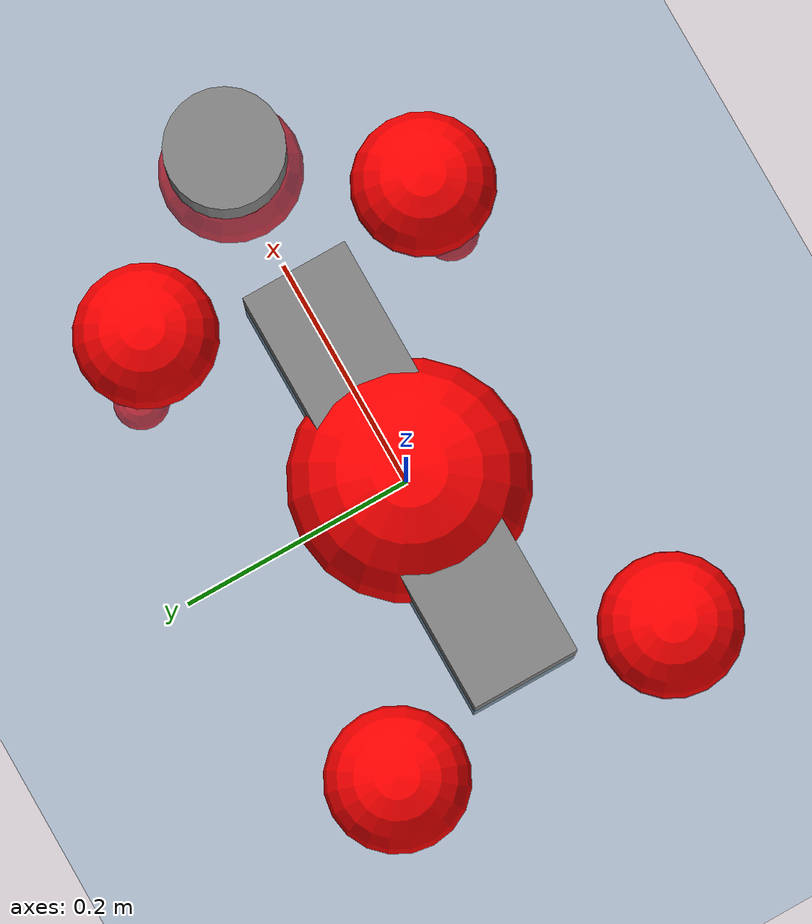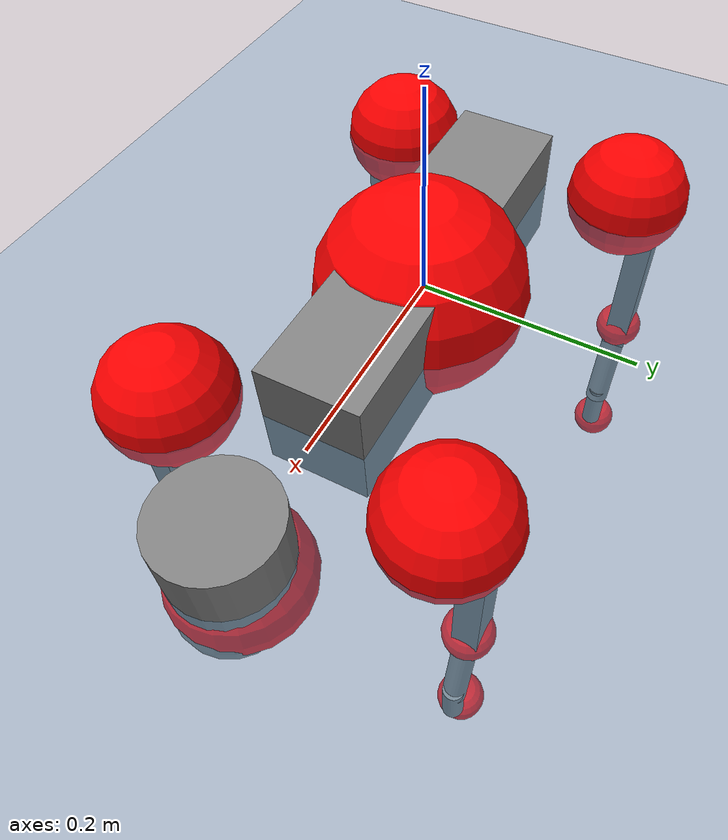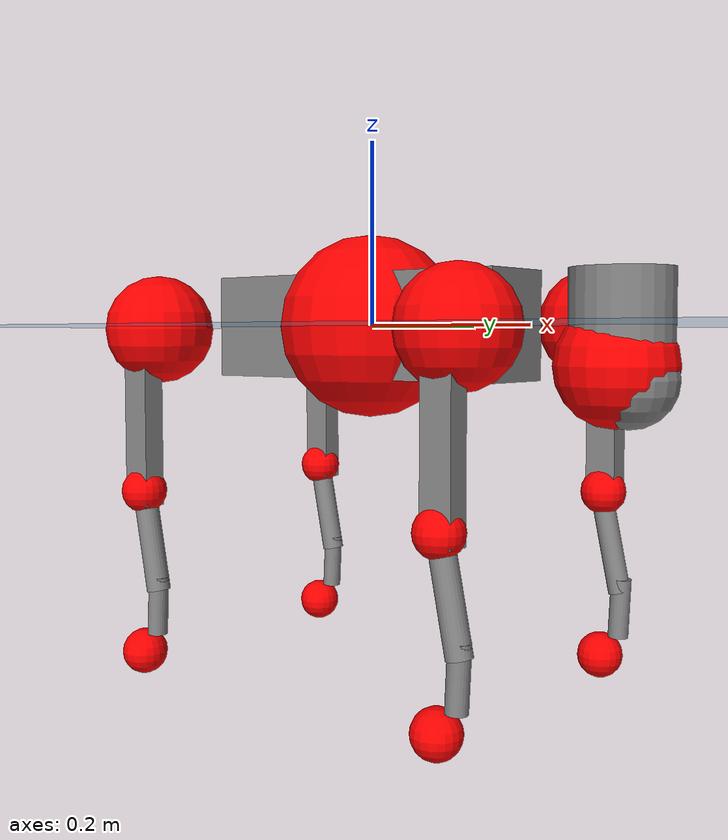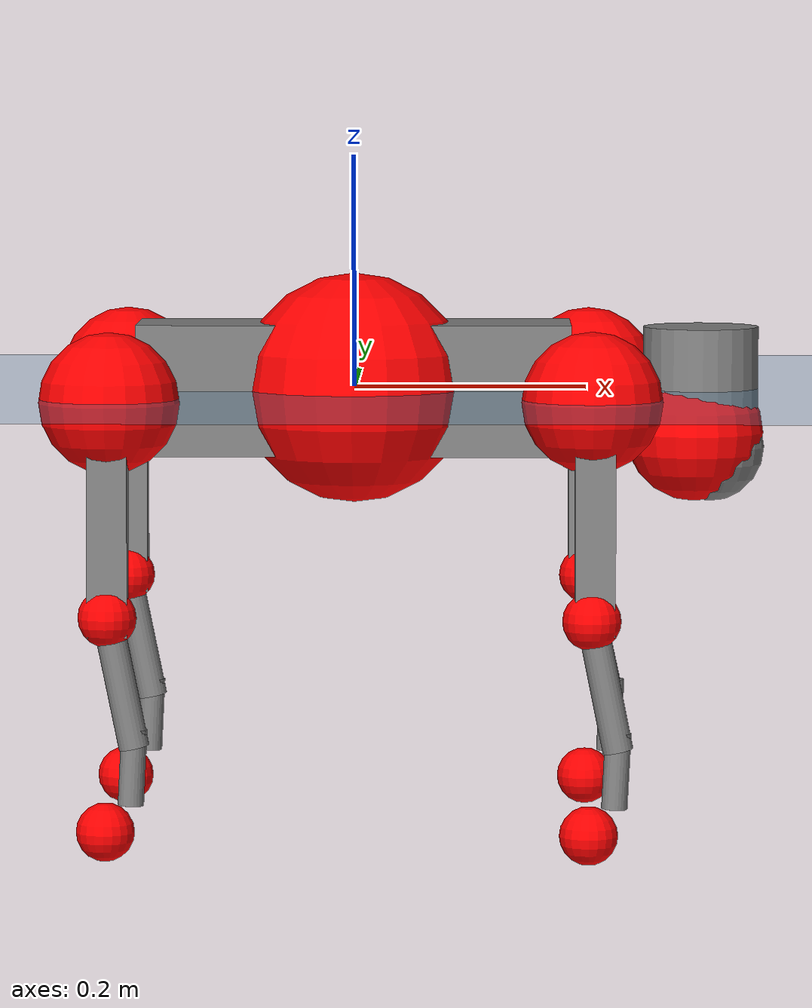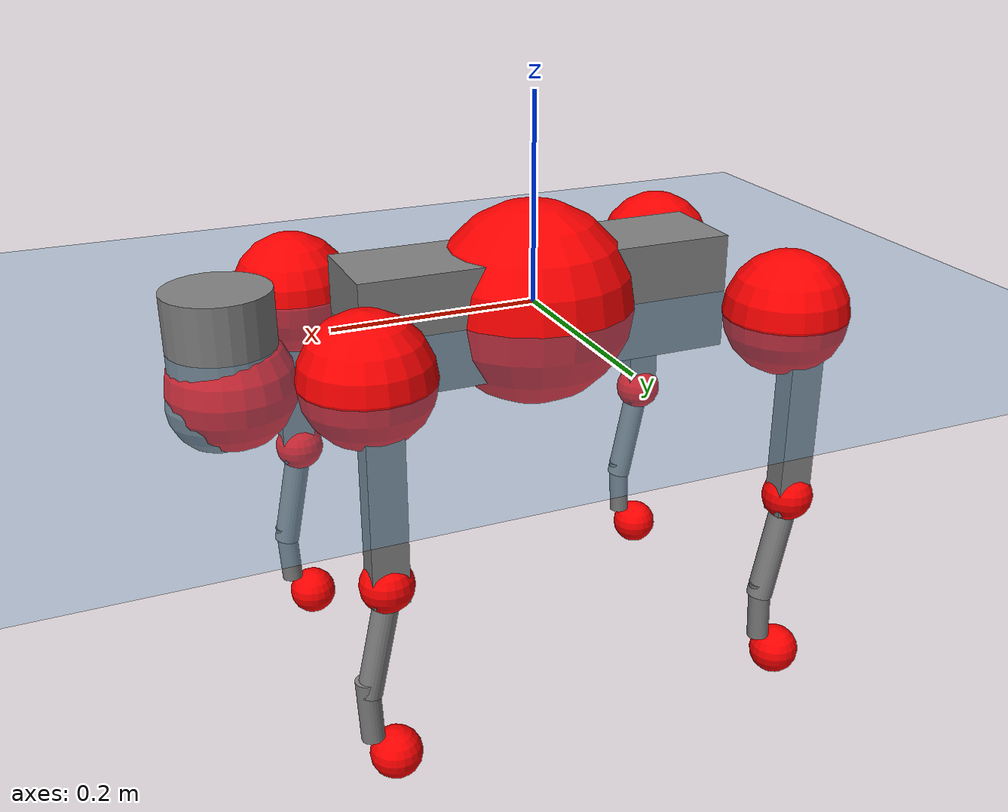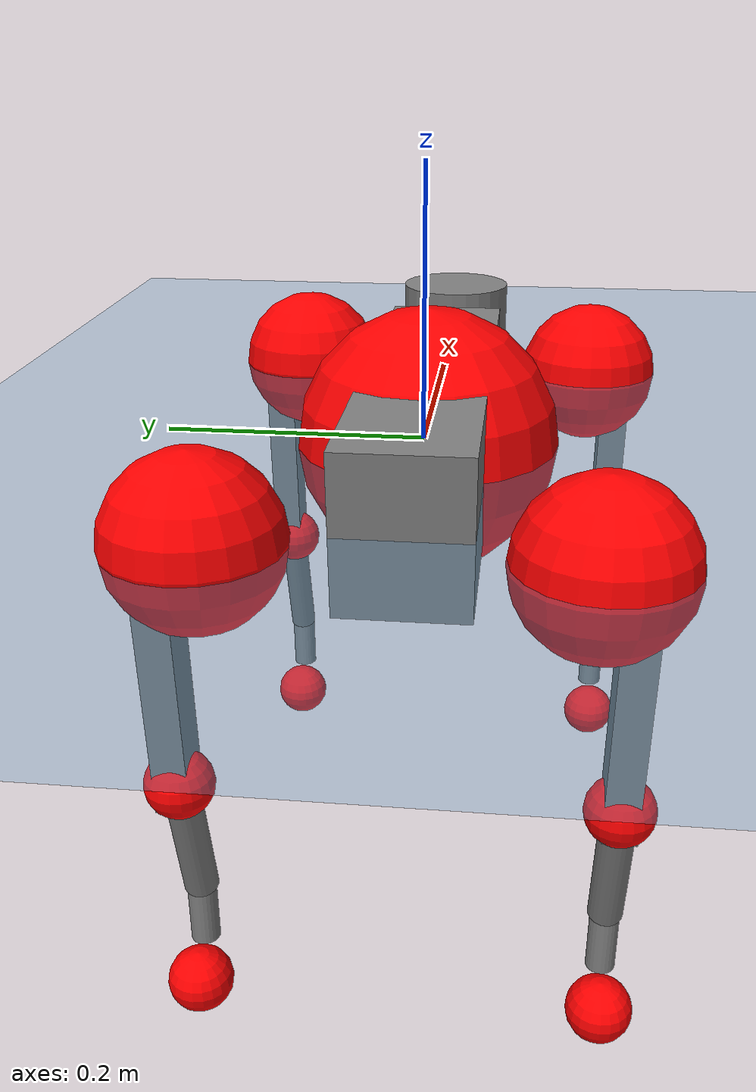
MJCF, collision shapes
<mujoco model="go2">
  <compiler angle="radian" assetdir="assets" balanceinertia="true" inertiafromgeom="false"/>

  <option timestep="0.005" density="1.2" viscosity="2e-05"/>

  <size nkey="1"/>

  <visual>
    <quality shadowsize="8192"/>
    <map shadowclip="0.5"/>
  </visual>

  <default>
    <default class="/">
      <geom contype="0" conaffinity="0" group="1" solref="-1000 -80"/>
      <site size="0.01 0.005 0.005" group="5"/>
      <general forcelimited="true" biastype="affine" gainprm="20" biasprm="0 -20 -0.5"/>
      <default class="go2">
        <joint armature="0.01" damping="0.01" frictionloss="0.2"/>
        <geom condim="1" margin="0.001"/>
        <default class="visual">
          <geom type="mesh" group="2"/>
        </default>
        <default class="collision">
          <geom group="3"/>
          <default class="foot">
            <geom size="0.022 0 0" condim="6" priority="1" friction="0.8 0.02 0.01" solimp="0.015 1 0.022"/>
          </default>
        </default>
        <default class="reward_collision_sphere">
          <geom group="5" rgba="1 0 0 1"/>
        </default>
      </default>
    </default>
  </default>

  <asset>
    <texture type="skybox" colorspace="auto" name="//unnamed_texture_0" builtin="gradient" rgb1="0.95 0.95 0.95" rgb2="0.95 0.95 0.95" width="100" height="600"/>
    <texture type="2d" colorspace="auto" name="texplane" builtin="checker" rgb1="0.345 0.575 0.748" rgb2="0.345 0.575 0.748" markrgb="1 1 1" width="512" height="512"/>
    <material name="MatPlane" class="/" texture="texplane" texuniform="true" texrepeat="2 2" specular="0.9"/>
    <material name="metal" class="/" rgba="0.9 0.95 0.95 1"/>
    <material name="black" class="/" rgba="0 0 0 1"/>
    <material name="white" class="/"/>
    <material name="gray" class="/" rgba="0.671705 0.692426 0.77427 1"/>
    <mesh name="base_0" class="/" file="base_0.obj"/>
    <mesh name="base_1" class="/" file="base_1.obj"/>
    <mesh name="base_2" class="/" file="base_2.obj"/>
    <mesh name="base_3" class="/" file="base_3.obj"/>
    <mesh name="base_4" class="/" file="base_4.obj"/>
    <mesh name="hip_0" class="/" file="hip_0.obj"/>
    <mesh name="hip_1" class="/" file="hip_1.obj"/>
    <mesh name="thigh_0" class="/" file="thigh_0.obj"/>
    <mesh name="thigh_1" class="/" file="thigh_1.obj"/>
    <mesh name="thigh_mirror_0" class="/" file="thigh_mirror_0.obj"/>
    <mesh name="thigh_mirror_1" class="/" file="thigh_mirror_1.obj"/>
    <mesh name="calf_0" class="/" file="calf_0.obj"/>
    <mesh name="calf_1" class="/" file="calf_1.obj"/>
    <mesh name="calf_mirror_0" class="/" file="calf_mirror_0.obj"/>
    <mesh name="calf_mirror_1" class="/" file="calf_mirror_1.obj"/>
    <mesh name="foot" class="/" file="foot.obj"/>
  </asset>

  <worldbody>
    <geom name="floor" class="/" size="100 100 0.125" type="plane" group="0" material="MatPlane"/>
    <light name="toplight_shadow" class="/" pos="0 0 5" dir="0.0990148 0.0990148 -0.990148" type="directional" ambient="0.04 0.04 0.04" diffuse="0.55 0.55 0.55" specular="0.12 0.12 0.12"/>
    <light name="toplight_fill" class="/" pos="0 0 5" dir="0.0990148 0.0990148 -0.990148" type="directional" castshadow="false" ambient="0.04 0.04 0.04" diffuse="0.3 0.3 0.3" specular="0.08 0.08 0.08"/>
    <body name="trunk" childclass="go2" pos="-0.000109917 -0.00282594 -0.000881736" quat="1 -1.56783e-05 1.08033e-05 -3.06382e-05">
      <inertial pos="0.022706 -0.00291832 -0.00437794" quat="-0.00610976 0.713476 0.00287287 0.700647" mass="6.65782" diaginertia="0.132467 0.136933 0.0110212"/>
      <joint name="//unnamed_joint_0" type="free" armature="0" damping="0" frictionloss="0"/>
      <geom name="//unnamed_geom_1" class="visual" material="black" mesh="base_0"/>
      <geom name="//unnamed_geom_2" class="visual" material="black" mesh="base_1"/>
      <geom name="//unnamed_geom_3" class="visual" material="black" mesh="base_2"/>
      <geom name="//unnamed_geom_4" class="visual" material="white" mesh="base_3"/>
      <geom name="//unnamed_geom_5" class="visual" material="gray" mesh="base_4"/>
      <geom name="trunk_1" class="collision" size="0.186718 0.0464066 0.0565814" type="box"/>
      <geom name="trunk_2" class="collision" size="0.0496328 0.0446695" pos="0.299321 0 0.00853465" type="cylinder"/>
      <geom name="trunk_3" class="collision" size="0.0466548" pos="0.307723 0 -0.0512079"/>
      <geom name="//unnamed_geom_9" class="reward_collision_sphere" size="0.0992655"/>
      <geom name="//unnamed_geom_10" class="reward_collision_sphere" size="0.0595593" pos="0.29407 0 -0.0384059"/>
      <site name="imu" pos="-0.0127046 0.0119107 0.0219862" size="0.00992655"/>
      <camera name="track" pos="0 -2.1485 0" quat="0.707107 0.707107 0 0" mode="trackcom"/>
      <camera name="ego_camera" pos="0.327678 0 0.0384059" quat="-0.5 -0.5 0.5 0.5"/>
      <body name="FL_hip" pos="0.205351 0.0515133 0.00208944" quat="0.999999 -0.000960101 -0.000237835 0.000731197">
        <inertial pos="-0.00464052 0.00224445 0.00202739" quat="0.501125 0.496797 0.504052 0.497995" mass="0.637037" diaginertia="0.00112822 0.000813431 0.000216681"/>
        <joint name="FL_hip_joint" pos="0 0 0" axis="0.999977 -0.00532651 0.00415215" stiffness="0.0120953" range="-1.01971 1.09121" armature="0.00995886" damping="0" frictionloss="0.225807"/>
        <geom name="//unnamed_geom_11" class="visual" material="metal" mesh="hip_0"/>
        <geom name="//unnamed_geom_12" class="visual" material="gray" mesh="hip_1"/>
        <geom name="//unnamed_geom_13" class="collision" size="0.0456621 0.0198531" pos="0 0.08594 0" quat="0.707107 0.707107 0 0" type="cylinder"/>
        <geom name="//unnamed_geom_14" class="reward_collision_sphere" size="0.0595593" pos="0 0.0751975 0"/>
        <body name="FL_thigh" pos="-0.000513884 0.10414 0.000440838" quat="0.999999 -0.000448964 -0.00131459 -0.000747537">
          <inertial pos="-0.001146 -0.0213576 -0.0288263" quat="0.830616 0.0717154 -0.0220172 0.55177" mass="1.12535" diaginertia="0.0074897 0.00831298 0.000395052"/>
          <joint name="FL_thigh_joint" pos="0 0 0" axis="-0.0176105 0.999831 0.0052379" stiffness="0.00478602" range="-1.52888 3.53605" armature="0.0113073" damping="0" frictionloss="0.208477"/>
          <geom name="//unnamed_geom_15" class="visual" material="metal" mesh="thigh_0"/>
          <geom name="//unnamed_geom_16" class="visual" material="gray" mesh="thigh_1"/>
          <geom name="//unnamed_geom_17" class="collision" size="0.105718 0.01216 0.0168751" pos="0 0 -0.0908941" quat="0.707107 0 0.707107 0" type="box"/>
          <body name="FL_calf" pos="-0.000271405 -0.00252133 -0.183076" quat="0.999999 -0.000821114 -0.000388018 -0.000712576">
            <inertial pos="0.0093451 -0.000838379 -0.122109" quat="0.710572 0.00153864 -0.0047212 0.703607" mass="0.239811" diaginertia="0.00184132 0.0021562 2.35042e-05"/>
            <joint name="FL_calf_joint" pos="0 0 0" axis="-0.00730296 0.999971 0.00214065" range="-2.7604 -0.828247" armature="0.00860706" damping="0.00352597" frictionloss="0.201394"/>
            <geom name="//unnamed_geom_18" class="visual" material="gray" mesh="calf_0"/>
            <geom name="//unnamed_geom_19" class="visual" material="black" mesh="calf_1"/>
            <geom name="FL_calf0" class="collision" size="0.0119119 0.0595593" pos="0.008402 0 -0.0512079" quat="0.994493 0 -0.104807 0" type="cylinder"/>
            <geom name="//unnamed_geom_21" class="collision" size="0.0109192 0.0322613" pos="0.021005 0 -0.126313" quat="0.999688 0 0.0249974 0" type="cylinder"/>
            <geom name="//unnamed_geom_22" class="visual" pos="0 0 -0.181788" quat="1 0 0 0" material="black" mesh="foot"/>
            <geom name="FL_foot" class="foot" size="0.0159516" pos="-0.0021005 0 -0.181788"/>
            <geom name="//unnamed_geom_24" class="reward_collision_sphere" size="0.0248164"/>
            <geom name="//unnamed_geom_25" class="reward_collision_sphere" size="0.0248164" pos="-0.0021005 0 -0.181788"/>
            <site name="FL_foot" class="foot" pos="-0.0021005 0 -0.181788" size="0.00992655"/>
          </body>
        </body>
      </body>
      <body name="FR_hip" pos="0.203006 -0.0525079 -0.002474" quat="1 2.54268e-07 -3.45016e-06 -1.94082e-06">
        <inertial pos="-0.00598105 -0.00297173 -0.000152517" quat="0.497251 0.505605 0.498315 0.498785" mass="0.634901" diaginertia="0.00111284 0.000828463 0.00022266"/>
        <joint name="FR_hip_joint" pos="0 0 0" axis="0.999911 0.00219675 -0.0131511" range="-1.05051 1.05945" armature="0.0100385" damping="0.0111494" frictionloss="0.20699"/>
        <geom name="//unnamed_geom_26" class="visual" pos="0 1.92338e-09 8.24979e-08" quat="4.63268e-05 1 0 0" material="metal" mesh="hip_0"/>
        <geom name="//unnamed_geom_27" class="visual" pos="0 3.11804e-09 -2.04049e-07" quat="4.63268e-05 1 0 0" material="gray" mesh="hip_1"/>
        <geom name="//unnamed_geom_28" class="collision" size="0.0456621 0.0198531" pos="0 -0.08594 0" quat="0.707107 0.707107 0 0" type="cylinder"/>
        <geom name="//unnamed_geom_29" class="reward_collision_sphere" size="0.0595593" pos="0 -0.0751975 0"/>
        <body name="FR_thigh" pos="0.00222976 -0.101207 0.0020662" quat="0.999999 0.000646403 0.000160901 0.000800924">
          <inertial pos="-0.00443644 0.0221964 -0.0274056" quat="0.545611 -0.0211669 0.0954701 0.832314" mass="1.20639" diaginertia="0.0077885 0.00866467 0.000405695"/>
          <joint name="FR_thigh_joint" pos="0 0 0" axis="-0.00035692 -0.999988 0.00496717" range="-3.53293 1.56881" armature="0.0094284" damping="0.0139301" frictionloss="0.198909"/>
          <geom name="//unnamed_geom_30" class="visual" material="metal" mesh="thigh_mirror_0"/>
          <geom name="//unnamed_geom_31" class="visual" material="gray" mesh="thigh_mirror_1"/>
          <geom name="//unnamed_geom_32" class="collision" size="0.105718 0.01216 0.0168751" pos="0 0 -0.0908941" quat="0.707107 0 0.707107 0" type="box"/>
          <body name="FR_calf" pos="-0.00258484 -0.00143441 -0.183845" quat="0.999999 0.000217668 0.000188313 -0.00129049">
            <inertial pos="0.00804942 0.000923942 -0.118309" quat="0.698455 -0.00644496 0.0121619 0.715522" mass="0.233275" diaginertia="0.00188986 0.00208429 2.41788e-05"/>
            <joint name="FR_calf_joint" pos="0 0 0" axis="-0.0024342 -0.999957 -0.00894687" range="0.816792 2.71936" armature="0.0109926" damping="0.0206222" frictionloss="0.171939"/>
            <geom name="//unnamed_geom_33" class="visual" material="gray" mesh="calf_mirror_0"/>
            <geom name="//unnamed_geom_34" class="visual" material="black" mesh="calf_mirror_1"/>
            <geom name="FR_calf0" class="collision" size="0.0129045 0.0595593" pos="0.0105025 0 -0.0512079" quat="0.995004 0 -0.0998334 0" type="cylinder"/>
            <geom name="//unnamed_geom_36" class="collision" size="0.0109192 0.0322613" pos="0.021005 0 -0.126313" quat="0.999688 0 0.0249974 0" type="cylinder"/>
            <geom name="//unnamed_geom_37" class="visual" pos="0 0 -0.181788" quat="1 0 0 0" material="black" mesh="foot"/>
            <geom name="FR_foot" class="foot" size="0.0202262" pos="-0.0021005 0 -0.181788"/>
            <geom name="//unnamed_geom_39" class="reward_collision_sphere" size="0.0248164"/>
            <geom name="//unnamed_geom_40" class="reward_collision_sphere" size="0.0248164" pos="-0.0021005 0 -0.181788"/>
            <site name="FR_foot" class="foot" pos="-0.0021005 0 -0.181788" size="0.00992655"/>
          </body>
        </body>
      </body>
      <body name="RL_hip" pos="-0.203728 0.0511382 0.00193542" quat="1 0.000301852 -0.00012443 0.000459252">
        <inertial pos="0.00560529 -0.000465693 0.00238788" quat="0.506073 0.497532 0.496773 0.499568" mass="0.677173" diaginertia="0.00114659 0.00086679 0.000220413"/>
        <joint name="RL_hip_joint" pos="0 0 0" axis="-0.999711 -0.0197818 0.0136778" range="-1.05522 1.0126" armature="0.00990486" damping="0.0108054" frictionloss="0.191102"/>
        <geom name="//unnamed_geom_41" class="visual" pos="-1.71431e-09 0 -3.36044e-07" quat="4.63268e-05 0 1 0" material="metal" mesh="hip_0"/>
        <geom name="//unnamed_geom_42" class="visual" pos="-2.7791e-09 0 -2.98023e-07" quat="4.63268e-05 0 1 0" material="gray" mesh="hip_1"/>
        <geom name="//unnamed_geom_43" class="collision" size="0.0456621 0.0198531" pos="0 0.08594 0" quat="0.707107 0.707107 0 0" type="cylinder"/>
        <geom name="//unnamed_geom_44" class="reward_collision_sphere" size="0.0595593" pos="0 0.0751975 0"/>
        <body name="RL_thigh" pos="-0.00230843 0.102471 -0.00124558" quat="1 -7.19528e-05 0.000151188 0.000272976">
          <inertial pos="-0.00412729 -0.0226899 -0.0302758" quat="0.826762 0.0889611 -0.0307691 0.554621" mass="1.16374" diaginertia="0.00770879 0.00861676 0.000407509"/>
          <joint name="RL_thigh_joint" pos="0 0 0" axis="0.00301927 0.999989 0.00352035" stiffness="0.00572463" range="-0.578995 4.58826" armature="0.00941426" damping="0" frictionloss="0.207423"/>
          <geom name="//unnamed_geom_45" class="visual" material="metal" mesh="thigh_0"/>
          <geom name="//unnamed_geom_46" class="visual" material="gray" mesh="thigh_1"/>
          <geom name="//unnamed_geom_47" class="collision" size="0.105718 0.01216 0.0168751" pos="0 0 -0.0908941" quat="0.707107 0 0.707107 0" type="box"/>
          <body name="RL_calf" pos="-0.00199747 -0.00208366 -0.181544" quat="1 0.000142619 9.66139e-05 0.000172397">
            <inertial pos="0.00737277 -0.00018633 -0.119549" quat="0.711676 0.00232138 -0.00441503 0.70249" mass="0.251346" diaginertia="0.00202887 0.0021696 2.47458e-05"/>
            <joint name="RL_calf_joint" pos="0 0 0" axis="0.0121098 0.999899 -0.00742138" stiffness="0.00275448" range="-2.68444 -0.893286" armature="0.0100767" damping="0" frictionloss="0.19339"/>
            <geom name="//unnamed_geom_48" class="visual" material="gray" mesh="calf_0"/>
            <geom name="//unnamed_geom_49" class="visual" material="black" mesh="calf_1"/>
            <geom name="RL_calf0" class="collision" size="0.0129045 0.0595593" pos="0.0105025 0 -0.0512079" quat="0.995004 0 -0.0998334 0" type="cylinder"/>
            <geom name="//unnamed_geom_51" class="collision" size="0.0109192 0.0322613" pos="0.021005 0 -0.126313" quat="0.999688 0 0.0249974 0" type="cylinder"/>
            <geom name="//unnamed_geom_52" class="visual" pos="0 0 -0.181788" quat="1 0 0 0" material="black" mesh="foot"/>
            <geom name="RL_foot" class="foot" size="0.0202567" pos="-0.0021005 0 -0.181788"/>
            <geom name="//unnamed_geom_54" class="reward_collision_sphere" size="0.0248164"/>
            <geom name="//unnamed_geom_55" class="reward_collision_sphere" size="0.0248164" pos="-0.0021005 0 -0.181788"/>
            <site name="RL_foot" class="foot" pos="-0.0021005 0 -0.181788" size="0.00992655"/>
          </body>
        </body>
      </body>
      <body name="RR_hip" pos="-0.203634 -0.0493903 -0.00333933" quat="0.999999 0.00110054 0.000549919 -1.19521e-05">
        <inertial pos="0.00530543 0.000764707 -0.00292615" quat="0.499421 0.498049 0.497783 0.504715" mass="0.681875" diaginertia="0.00120475 0.000889762 0.000230474"/>
        <joint name="RR_hip_joint" pos="0 0 0" axis="-0.99995 0.00789786 -0.00605721" stiffness="0.00642183" range="-1.02376 0.998985" armature="0.009811" damping="0.00346663" frictionloss="0.188524"/>
        <geom name="//unnamed_geom_56" class="visual" pos="1.71514e-09 1.92338e-09 -4.18542e-07" quat="2.14617e-09 4.63268e-05 4.63268e-05 -1" material="metal" mesh="hip_0"/>
        <geom name="//unnamed_geom_57" class="visual" pos="2.77704e-09 3.11804e-09 -9.39743e-08" quat="2.14617e-09 4.63268e-05 4.63268e-05 -1" material="gray" mesh="hip_1"/>
        <geom name="//unnamed_geom_58" class="collision" size="0.0456621 0.0198531" pos="0 -0.08594 0" quat="0.707107 0.707107 0 0" type="cylinder"/>
        <geom name="//unnamed_geom_59" class="reward_collision_sphere" size="0.0595593" pos="0 -0.0751975 0"/>
        <body name="RR_thigh" pos="0.000173686 -0.100002 0.00159395" quat="0.999999 0.000956051 0.000827068 -0.000636464">
          <inertial pos="-0.00359223 0.0215491 -0.0254335" quat="0.549332 -0.020486 0.0850331 0.831014" mass="1.0885" diaginertia="0.00728769 0.00811143 0.000386037"/>
          <joint name="RR_thigh_joint" pos="0 0 0" axis="-0.00213544 -0.999993 -0.00297628" range="-4.55742 0.572917" armature="0.0100909" damping="0.0111937" frictionloss="0.189815"/>
          <geom name="//unnamed_geom_60" class="visual" material="metal" mesh="thigh_mirror_0"/>
          <geom name="//unnamed_geom_61" class="visual" material="gray" mesh="thigh_mirror_1"/>
          <geom name="//unnamed_geom_62" class="collision" size="0.105718 0.01216 0.0168751" pos="0 0 -0.0908941" quat="0.707107 0 0.707107 0" type="box"/>
          <body name="RR_calf" pos="-0.000539303 -0.000131089 -0.180933" quat="1 -0.000803835 -0.000388868 -0.000280898">
            <inertial pos="0.00781013 0.000592612 -0.120456" quat="0.705166 -0.00396657 0.00661131 0.709" mass="0.239271" diaginertia="0.00197496 0.00210166 2.40191e-05"/>
            <joint name="RR_calf_joint" pos="0 0 0" axis="-0.00277019 -0.999988 -0.00408626" range="0.779623 2.77195" armature="0.00866109" damping="0.0123782" frictionloss="0.203403"/>
            <geom name="//unnamed_geom_63" class="visual" material="gray" mesh="calf_mirror_0"/>
            <geom name="//unnamed_geom_64" class="visual" material="black" mesh="calf_mirror_1"/>
            <geom name="RR_calf0" class="collision" size="0.0129045 0.0595593" pos="0.0105025 0 -0.0512079" quat="0.995004 0 -0.0998334 0" type="cylinder"/>
            <geom name="//unnamed_geom_66" class="collision" size="0.0109192 0.0322613" pos="0.021005 0 -0.126313" quat="0.999688 0 0.0249974 0" type="cylinder"/>
            <geom name="//unnamed_geom_67" class="visual" pos="0 0 -0.181788" quat="1 0 0 0" material="black" mesh="foot"/>
            <geom name="RR_foot" class="foot" size="0.0196632" pos="-0.0021005 0 -0.181788"/>
            <geom name="//unnamed_geom_69" class="reward_collision_sphere" size="0.0248164"/>
            <geom name="//unnamed_geom_70" class="reward_collision_sphere" size="0.0248164" pos="-0.0021005 0 -0.181788"/>
            <site name="RR_foot" class="foot" pos="-0.0021005 0 -0.181788" size="0.00992655"/>
          </body>
        </body>
      </body>
    </body>
  </worldbody>

  <contact>
    <pair class="/" geom1="floor" geom2="FL_foot" name="//unnamed_contact_0"/>
    <pair class="/" geom1="floor" geom2="FR_foot" name="//unnamed_contact_1"/>
    <pair class="/" geom1="floor" geom2="RL_foot" name="//unnamed_contact_2"/>
    <pair class="/" geom1="floor" geom2="RR_foot" name="//unnamed_contact_3"/>
  </contact>

  <actuator>
    <general name="FL_hip" class="/" joint="FL_hip_joint" forcerange="-24.904 24.904" gainprm="21.046" biasprm="0 -21.046 -0.506108"/>
    <general name="FL_thigh" class="/" joint="FL_thigh_joint" forcerange="-21.1859 21.1859" gainprm="21.046" biasprm="0 -21.046 -0.506108"/>
    <general name="FL_calf" class="/" joint="FL_calf_joint" forcerange="-44.4348 44.4348" gainprm="21.046" biasprm="0 -21.046 -0.506108"/>
    <general name="FR_hip" class="/" joint="FR_hip_joint" forcerange="-25.4542 25.4542" gainprm="21.046" biasprm="0 -21.046 -0.506108"/>
    <general name="FR_thigh" class="/" joint="FR_thigh_joint" forcerange="-25.4389 25.4389" gainprm="21.046" biasprm="0 -21.046 -0.506108"/>
    <general name="FR_calf" class="/" joint="FR_calf_joint" forcerange="-49.4347 49.4347" gainprm="21.046" biasprm="0 -21.046 -0.506108"/>
    <general name="RL_hip" class="/" joint="RL_hip_joint" forcerange="-23.8067 23.8067" gainprm="21.046" biasprm="0 -21.046 -0.506108"/>
    <general name="RL_thigh" class="/" joint="RL_thigh_joint" forcerange="-22.6117 22.6117" gainprm="21.046" biasprm="0 -21.046 -0.506108"/>
    <general name="RL_calf" class="/" joint="RL_calf_joint" forcerange="-40.9764 40.9764" gainprm="21.046" biasprm="0 -21.046 -0.506108"/>
    <general name="RR_hip" class="/" joint="RR_hip_joint" forcerange="-21.8498 21.8498" gainprm="21.046" biasprm="0 -21.046 -0.506108"/>
    <general name="RR_thigh" class="/" joint="RR_thigh_joint" forcerange="-24.4511 24.4511" gainprm="21.046" biasprm="0 -21.046 -0.506108"/>
    <general name="RR_calf" class="/" joint="RR_calf_joint" forcerange="-45.7768 45.7768" gainprm="21.046" biasprm="0 -21.046 -0.506108"/>
  </actuator>

  <sensor>
    <gyro site="imu" name="imu_angular_velocity"/>
    <velocimeter site="imu" name="imu_linear_velocity"/>
    <framelinvel objtype="site" objname="FL_foot" name="FL_foot_global_linear_velocity"/>
    <framelinvel objtype="site" objname="FR_foot" name="FR_foot_global_linear_velocity"/>
    <framelinvel objtype="site" objname="RL_foot" name="RL_foot_global_linear_velocity"/>
    <framelinvel objtype="site" objname="RR_foot" name="RR_foot_global_linear_velocity"/>
  </sensor>

  <keyframe>
    <key name="home" qpos="0 0 0.325 1 0 0 0 0.1 0.8 -1.5 -0.1 -0.8 1.5 -0.1 0.8 -1.5 0.1 -0.8 1.5"/>
  </keyframe>
</mujoco>
